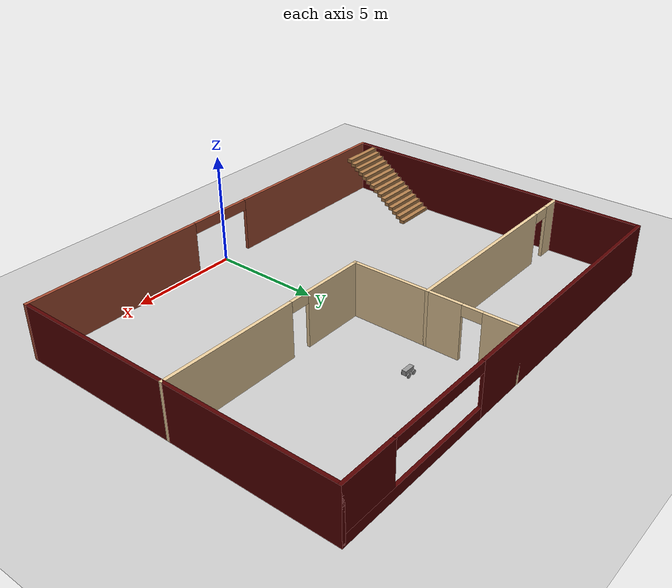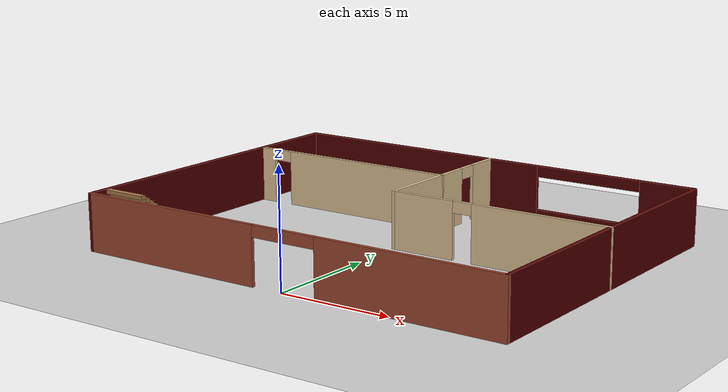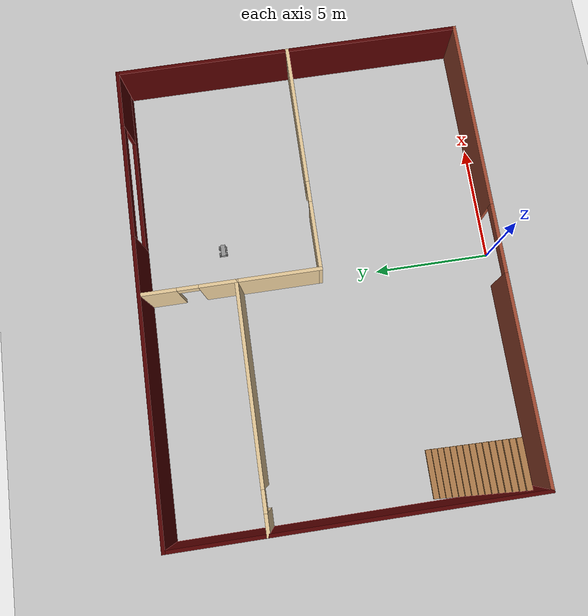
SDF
<sdf version="1.6">
 <world name="default">
  <model name="ground_plane">
   <static>1</static>
   <link name="link">
    <collision name="collision">
     <geometry><plane><normal>0 0 1</normal><size>100 100</size></plane></geometry>
     <surface>
      <contact><collide_bitmask>65535</collide_bitmask></contact>
      <friction><ode><mu>100</mu><mu2>50</mu2></ode></friction>
     </surface>
    </collision>
    <visual name="visual">
     <cast_shadows>0</cast_shadows>
     <geometry><plane><normal>0 0 1</normal><size>100 100</size></plane></geometry>
     <material>
      <script><uri>file://media/materials/scripts/gazebo.material</uri><name>Gazebo/Grey</name></script>
     </material>
    </visual>
   </link>
  </model>
  <model name="house">
   <pose>-0.056662 7.5 0 0 -0 0</pose>
   <link name="Stairs_0">
    <visual name="Stairs_0_Visual_0">
     <pose>-8.85 -3.36767 0.083333 0 -0 0</pose>
     <geometry><box><size>2 0.233333 0.166667</size></box></geometry>
     <material>
      <script><uri>file://media/materials/scripts/gazebo.material</uri><name>Gazebo/Wood</name></script>
      <ambient>1 1 1 1</ambient>
     </material>
     <meta><layer>0</layer></meta>
    </visual>
    <collision name="Stairs_0_Collision_0">
     <geometry><box><size>2 0.233333 0.166667</size></box></geometry>
     <pose>-8.85 -3.36767 0.083333 0 -0 0</pose>
    </collision>
    <visual name="Stairs_0_Visual_1">
     <pose>-8.85 -3.601 0.25 0 -0 0</pose>
     <geometry><box><size>2 0.233333 0.166667</size></box></geometry>
     <material>
      <script><uri>file://media/materials/scripts/gazebo.material</uri><name>Gazebo/Wood</name></script>
      <ambient>1 1 1 1</ambient>
     </material>
     <meta><layer>0</layer></meta>
    </visual>
    <collision name="Stairs_0_Collision_1">
     <geometry><box><size>2 0.233333 0.166667</size></box></geometry>
     <pose>-8.85 -3.601 0.25 0 -0 0</pose>
    </collision>
    <visual name="Stairs_0_Visual_2">
     <pose>-8.85 -3.83433 0.416667 0 -0 0</pose>
     <geometry><box><size>2 0.233333 0.166667</size></box></geometry>
     <material>
      <script><uri>file://media/materials/scripts/gazebo.material</uri><name>Gazebo/Wood</name></script>
      <ambient>1 1 1 1</ambient>
     </material>
     <meta><layer>0</layer></meta>
    </visual>
    <collision name="Stairs_0_Collision_2">
     <geometry><box><size>2 0.233333 0.166667</size></box></geometry>
     <pose>-8.85 -3.83433 0.416667 0 -0 0</pose>
    </collision>
    <visual name="Stairs_0_Visual_3">
     <pose>-8.85 -4.06767 0.583333 0 -0 0</pose>
     <geometry><box><size>2 0.233333 0.166667</size></box></geometry>
     <material>
      <script><uri>file://media/materials/scripts/gazebo.material</uri><name>Gazebo/Wood</name></script>
      <ambient>1 1 1 1</ambient>
     </material>
     <meta><layer>0</layer></meta>
    </visual>
    <collision name="Stairs_0_Collision_3">
     <geometry><box><size>2 0.233333 0.166667</size></box></geometry>
     <pose>-8.85 -4.06767 0.583333 0 -0 0</pose>
    </collision>
    <visual name="Stairs_0_Visual_4">
     <pose>-8.85 -4.301 0.75 0 -0 0</pose>
     <geometry><box><size>2 0.233333 0.166667</size></box></geometry>
     <material>
      <script><uri>file://media/materials/scripts/gazebo.material</uri><name>Gazebo/Wood</name></script>
      <ambient>1 1 1 1</ambient>
     </material>
     <meta><layer>0</layer></meta>
    </visual>
    <collision name="Stairs_0_Collision_4">
     <geometry><box><size>2 0.233333 0.166667</size></box></geometry>
     <pose>-8.85 -4.301 0.75 0 -0 0</pose>
    </collision>
    <visual name="Stairs_0_Visual_5">
     <pose>-8.85 -4.53433 0.916667 0 -0 0</pose>
     <geometry><box><size>2 0.233333 0.166667</size></box></geometry>
     <material>
      <script><uri>file://media/materials/scripts/gazebo.material</uri><name>Gazebo/Wood</name></script>
      <ambient>1 1 1 1</ambient>
     </material>
     <meta><layer>0</layer></meta>
    </visual>
    <collision name="Stairs_0_Collision_5">
     <geometry><box><size>2 0.233333 0.166667</size></box></geometry>
     <pose>-8.85 -4.53433 0.916667 0 -0 0</pose>
    </collision>
    <visual name="Stairs_0_Visual_6">
     <pose>-8.85 -4.76767 1.08333 0 -0 0</pose>
     <geometry><box><size>2 0.233333 0.166667</size></box></geometry>
     <material>
      <script><uri>file://media/materials/scripts/gazebo.material</uri><name>Gazebo/Wood</name></script>
      <ambient>1 1 1 1</ambient>
     </material>
     <meta><layer>0</layer></meta>
    </visual>
    <collision name="Stairs_0_Collision_6">
     <geometry><box><size>2 0.233333 0.166667</size></box></geometry>
     <pose>-8.85 -4.76767 1.08333 0 -0 0</pose>
    </collision>
    <visual name="Stairs_0_Visual_7">
     <pose>-8.85 -5.001 1.25 0 -0 0</pose>
     <geometry><box><size>2 0.233333 0.166667</size></box></geometry>
     <material>
      <script><uri>file://media/materials/scripts/gazebo.material</uri><name>Gazebo/Wood</name></script>
      <ambient>1 1 1 1</ambient>
     </material>
     <meta><layer>0</layer></meta>
    </visual>
    <collision name="Stairs_0_Collision_7">
     <geometry><box><size>2 0.233333 0.166667</size></box></geometry>
     <pose>-8.85 -5.001 1.25 0 -0 0</pose>
    </collision>
    <visual name="Stairs_0_Visual_8">
     <pose>-8.85 -5.23433 1.41667 0 -0 0</pose>
     <geometry><box><size>2 0.233333 0.166667</size></box></geometry>
     <material>
      <script><uri>file://media/materials/scripts/gazebo.material</uri><name>Gazebo/Wood</name></script>
      <ambient>1 1 1 1</ambient>
     </material>
     <meta><layer>0</layer></meta>
    </visual>
    <collision name="Stairs_0_Collision_8">
     <geometry><box><size>2 0.233333 0.166667</size></box></geometry>
     <pose>-8.85 -5.23433 1.41667 0 -0 0</pose>
    </collision>
    <visual name="Stairs_0_Visual_9">
     <pose>-8.85 -5.46767 1.58333 0 -0 0</pose>
     <geometry><box><size>2 0.233333 0.166667</size></box></geometry>
     <material>
      <script><uri>file://media/materials/scripts/gazebo.material</uri><name>Gazebo/Wood</name></script>
      <ambient>1 1 1 1</ambient>
     </material>
     <meta><layer>0</layer></meta>
    </visual>
    <collision name="Stairs_0_Collision_9">
     <geometry><box><size>2 0.233333 0.166667</size></box></geometry>
     <pose>-8.85 -5.46767 1.58333 0 -0 0</pose>
    </collision>
    <visual name="Stairs_0_Visual_10">
     <pose>-8.85 -5.701 1.75 0 -0 0</pose>
     <geometry><box><size>2 0.233333 0.166667</size></box></geometry>
     <material>
      <script><uri>file://media/materials/scripts/gazebo.material</uri><name>Gazebo/Wood</name></script>
      <ambient>1 1 1 1</ambient>
     </material>
     <meta><layer>0</layer></meta>
    </visual>
    <collision name="Stairs_0_Collision_10">
     <geometry><box><size>2 0.233333 0.166667</size></box></geometry>
     <pose>-8.85 -5.701 1.75 0 -0 0</pose>
    </collision>
    <visual name="Stairs_0_Visual_11">
     <pose>-8.85 -5.93433 1.91667 0 -0 0</pose>
     <geometry><box><size>2 0.233333 0.166667</size></box></geometry>
     <material>
      <script><uri>file://media/materials/scripts/gazebo.material</uri><name>Gazebo/Wood</name></script>
      <ambient>1 1 1 1</ambient>
     </material>
     <meta><layer>0</layer></meta>
    </visual>
    <collision name="Stairs_0_Collision_11">
     <geometry><box><size>2 0.233333 0.166667</size></box></geometry>
     <pose>-8.85 -5.93433 1.91667 0 -0 0</pose>
    </collision>
    <visual name="Stairs_0_Visual_12">
     <pose>-8.85 -6.16767 2.08333 0 -0 0</pose>
     <geometry><box><size>2 0.233333 0.166667</size></box></geometry>
     <material>
      <script><uri>file://media/materials/scripts/gazebo.material</uri><name>Gazebo/Wood</name></script>
      <ambient>1 1 1 1</ambient>
     </material>
     <meta><layer>0</layer></meta>
    </visual>
    <collision name="Stairs_0_Collision_12">
     <geometry><box><size>2 0.233333 0.166667</size></box></geometry>
     <pose>-8.85 -6.16767 2.08333 0 -0 0</pose>
    </collision>
    <visual name="Stairs_0_Visual_13">
     <pose>-8.85 -6.401 2.25 0 -0 0</pose>
     <geometry><box><size>2 0.233333 0.166667</size></box></geometry>
     <material>
      <script><uri>file://media/materials/scripts/gazebo.material</uri><name>Gazebo/Wood</name></script>
      <ambient>1 1 1 1</ambient>
     </material>
     <meta><layer>0</layer></meta>
    </visual>
    <collision name="Stairs_0_Collision_13">
     <geometry><box><size>2 0.233333 0.166667</size></box></geometry>
     <pose>-8.85 -6.401 2.25 0 -0 0</pose>
    </collision>
    <visual name="Stairs_0_Visual_14">
     <pose>-8.85 -6.63433 2.41667 0 -0 0</pose>
     <geometry><box><size>2 0.233333 0.166667</size></box></geometry>
     <material>
      <script><uri>file://media/materials/scripts/gazebo.material</uri><name>Gazebo/Wood</name></script>
      <ambient>1 1 1 1</ambient>
     </material>
     <meta><layer>0</layer></meta>
    </visual>
    <collision name="Stairs_0_Collision_14">
     <geometry><box><size>2 0.233333 0.166667</size></box></geometry>
     <pose>-8.85 -6.63433 2.41667 0 -0 0</pose>
    </collision>
   </link>
   <link name="Wall_11">
    <pose>5 0 0 0 -0 3.14159</pose>
    <visual name="Wall_11_Visual_0">
     <pose>-1.94599 0 1.25 0 -0 0</pose>
     <geometry><box><size>6.25803 0.15 2.5</size></box></geometry>
     <material>
      <script><uri>file://media/materials/scripts/gazebo.material</uri><name>Gazebo/Grey</name></script>
      <ambient>0.921569 0.807843 0.615686 1</ambient>
     </material>
     <meta><layer>0</layer></meta>
    </visual>
    <collision name="Wall_11_Collision_0">
     <geometry><box><size>6.25803 0.15 2.5</size></box></geometry>
     <pose>-1.94599 0 1.25 0 -0 0</pose>
    </collision>
    <visual name="Wall_11_Visual_1">
     <pose>3.57901 0 1.25 0 -0 0</pose>
     <geometry><box><size>2.99197 0.15 2.5</size></box></geometry>
     <material>
      <script><uri>file://media/materials/scripts/gazebo.material</uri><name>Gazebo/Grey</name></script>
      <ambient>0.921569 0.807843 0.615686 1</ambient>
     </material>
     <meta><layer>0</layer></meta>
    </visual>
    <collision name="Wall_11_Collision_1">
     <geometry><box><size>2.99197 0.15 2.5</size></box></geometry>
     <pose>3.57901 0 1.25 0 -0 0</pose>
    </collision>
    <visual name="Wall_11_Visual_2">
     <pose>1.63303 0 2.25 0 -0 0</pose>
     <geometry><box><size>0.9 0.15 0.5</size></box></geometry>
     <material>
      <script><uri>file://media/materials/scripts/gazebo.material</uri><name>Gazebo/Grey</name></script>
      <ambient>0.921569 0.807843 0.615686 1</ambient>
     </material>
     <meta><layer>0</layer></meta>
    </visual>
    <collision name="Wall_11_Collision_2">
     <geometry><box><size>0.9 0.15 0.5</size></box></geometry>
     <pose>1.63303 0 2.25 0 -0 0</pose>
    </collision>
   </link>
   <link name="Wall_12">
    <pose>0 3.75 0 0 -0 1.5708</pose>
    <visual name="Wall_12_Visual_0">
     <pose>-1.2625 0 1.25 0 -0 0</pose>
     <geometry><box><size>5.125 0.15 2.5</size></box></geometry>
     <material>
      <script><uri>file://media/materials/scripts/gazebo.material</uri><name>Gazebo/Grey</name></script>
      <ambient>0.921569 0.807843 0.615686 1</ambient>
     </material>
     <meta><layer>0</layer></meta>
    </visual>
    <collision name="Wall_12_Collision_0">
     <geometry><box><size>5.125 0.15 2.5</size></box></geometry>
     <pose>-1.2625 0 1.25 0 -0 0</pose>
    </collision>
    <visual name="Wall_12_Visual_1">
     <pose>3.0125 0 1.25 0 -0 0</pose>
     <geometry><box><size>1.625 0.15 2.5</size></box></geometry>
     <material>
      <script><uri>file://media/materials/scripts/gazebo.material</uri><name>Gazebo/Grey</name></script>
      <ambient>0.921569 0.807843 0.615686 1</ambient>
     </material>
     <meta><layer>0</layer></meta>
    </visual>
    <collision name="Wall_12_Collision_1">
     <geometry><box><size>1.625 0.15 2.5</size></box></geometry>
     <pose>3.0125 0 1.25 0 -0 0</pose>
    </collision>
    <visual name="Wall_12_Visual_2">
     <pose>1.75 0 2.25 0 -0 0</pose>
     <geometry><box><size>0.9 0.15 0.5</size></box></geometry>
     <material>
      <script><uri>file://media/materials/scripts/gazebo.material</uri><name>Gazebo/Grey</name></script>
      <ambient>0.921569 0.807843 0.615686 1</ambient>
     </material>
     <meta><layer>0</layer></meta>
    </visual>
    <collision name="Wall_12_Collision_2">
     <geometry><box><size>0.9 0.15 0.5</size></box></geometry>
     <pose>1.75 0 2.25 0 -0 0</pose>
    </collision>
   </link>
   <link name="Wall_14">
    <pose>-5 3.5 0 0 -0 0</pose>
    <visual name="Wall_14_Visual_0">
     <pose>-4.62816 0 1.25 0 -0 0</pose>
     <geometry><box><size>0.893672 0.15 2.5</size></box></geometry>
     <material>
      <script><uri>file://media/materials/scripts/gazebo.material</uri><name>Gazebo/Grey</name></script>
      <ambient>0.921569 0.807843 0.615686 1</ambient>
     </material>
     <meta><layer>0</layer></meta>
    </visual>
    <collision name="Wall_14_Collision_0">
     <geometry><box><size>0.893672 0.15 2.5</size></box></geometry>
     <pose>-4.62816 0 1.25 0 -0 0</pose>
    </collision>
    <visual name="Wall_14_Visual_1">
     <pose>0.896836 0 1.25 0 -0 0</pose>
     <geometry><box><size>8.35633 0.15 2.5</size></box></geometry>
     <material>
      <script><uri>file://media/materials/scripts/gazebo.material</uri><name>Gazebo/Grey</name></script>
      <ambient>0.921569 0.807843 0.615686 1</ambient>
     </material>
     <meta><layer>0</layer></meta>
    </visual>
    <collision name="Wall_14_Collision_1">
     <geometry><box><size>8.35633 0.15 2.5</size></box></geometry>
     <pose>0.896836 0 1.25 0 -0 0</pose>
    </collision>
    <visual name="Wall_14_Visual_2">
     <pose>-3.73133 0 2.25 0 -0 0</pose>
     <geometry><box><size>0.9 0.15 0.5</size></box></geometry>
     <material>
      <script><uri>file://media/materials/scripts/gazebo.material</uri><name>Gazebo/Grey</name></script>
      <ambient>0.921569 0.807843 0.615686 1</ambient>
     </material>
     <meta><layer>0</layer></meta>
    </visual>
    <collision name="Wall_14_Collision_2">
     <geometry><box><size>0.9 0.15 0.5</size></box></geometry>
     <pose>-3.73133 0 2.25 0 -0 0</pose>
    </collision>
   </link>
   <link name="Wall_6">
    <collision name="Wall_6_Collision">
     <geometry><box><size>15.15 0.15 2.5</size></box></geometry>
     <pose>0 0 1.25 0 -0 0</pose>
    </collision>
    <visual name="Wall_6_Visual">
     <pose>0 0 1.25 0 -0 0</pose>
     <geometry><box><size>15.15 0.15 2.5</size></box></geometry>
     <material>
      <script><uri>file://media/materials/scripts/gazebo.material</uri><name>Gazebo/Grey</name></script>
      <ambient>0.333333 0 0 1</ambient>
     </material>
     <meta><layer>0</layer></meta>
    </visual>
    <pose>-10 0 0 0 -0 1.5708</pose>
   </link>
   <link name="Wall_7">
    <pose>0 7.5 0 0 -0 0</pose>
    <visual name="Wall_7_Visual_0">
     <pose>-3.7875 0 1.25 0 -0 0</pose>
     <geometry><box><size>12.575 0.15 2.5</size></box></geometry>
     <material>
      <script><uri>file://media/materials/scripts/gazebo.material</uri><name>Gazebo/Grey</name></script>
      <ambient>0.333333 0 0 1</ambient>
     </material>
     <meta><layer>0</layer></meta>
    </visual>
    <collision name="Wall_7_Collision_0">
     <geometry><box><size>12.575 0.15 2.5</size></box></geometry>
     <pose>-3.7875 0 1.25 0 -0 0</pose>
    </collision>
    <visual name="Wall_7_Visual_1">
     <pose>6.2875 0 0.25 0 -0 0</pose>
     <geometry><box><size>7.575 0.15 0.5</size></box></geometry>
     <material>
      <script><uri>file://media/materials/scripts/gazebo.material</uri><name>Gazebo/Grey</name></script>
      <ambient>0.333333 0 0 1</ambient>
     </material>
     <meta><layer>0</layer></meta>
    </visual>
    <collision name="Wall_7_Collision_1">
     <geometry><box><size>7.575 0.15 0.5</size></box></geometry>
     <pose>6.2875 0 0.25 0 -0 0</pose>
    </collision>
    <visual name="Wall_7_Visual_2">
     <pose>8.7875 0 1.5 0 -0 0</pose>
     <geometry><box><size>2.575 0.15 2</size></box></geometry>
     <material>
      <script><uri>file://media/materials/scripts/gazebo.material</uri><name>Gazebo/Grey</name></script>
      <ambient>0.333333 0 0 1</ambient>
     </material>
     <meta><layer>0</layer></meta>
    </visual>
    <collision name="Wall_7_Collision_2">
     <geometry><box><size>2.575 0.15 2</size></box></geometry>
     <pose>8.7875 0 1.5 0 -0 0</pose>
    </collision>
    <visual name="Wall_7_Visual_3">
     <pose>5 0 2.25 0 -0 0</pose>
     <geometry><box><size>5 0.15 0.5</size></box></geometry>
     <material>
      <script><uri>file://media/materials/scripts/gazebo.material</uri><name>Gazebo/Grey</name></script>
      <ambient>0.333333 0 0 1</ambient>
     </material>
     <meta><layer>0</layer></meta>
    </visual>
    <collision name="Wall_7_Collision_3">
     <geometry><box><size>5 0.15 0.5</size></box></geometry>
     <pose>5 0 2.25 0 -0 0</pose>
    </collision>
   </link>
   <link name="Wall_8">
    <collision name="Wall_8_Collision">
     <geometry><box><size>15.15 0.15 2.5</size></box></geometry>
     <pose>0 0 1.25 0 -0 0</pose>
    </collision>
    <visual name="Wall_8_Visual">
     <pose>0 0 1.25 0 -0 0</pose>
     <geometry><box><size>15.15 0.15 2.5</size></box></geometry>
     <material>
      <script><uri>file://media/materials/scripts/gazebo.material</uri><name>Gazebo/Grey</name></script>
      <ambient>0.333333 0 0 1</ambient>
     </material>
     <meta><layer>0</layer></meta>
    </visual>
    <pose>10 0 0 0 0 -1.5708</pose>
   </link>
   <link name="Wall_9">
    <pose>0 -7.5 0 0 -0 3.14159</pose>
    <visual name="Wall_9_Visual_0">
     <pose>-5.88219 0 1.25 0 -0 0</pose>
     <geometry><box><size>8.38562 0.15 2.5</size></box></geometry>
     <material>
      <script><uri>file://media/materials/scripts/gazebo.material</uri><name>Gazebo/Bricks</name></script>
      <ambient>1 1 1 1</ambient>
     </material>
     <meta><layer>0</layer></meta>
    </visual>
    <collision name="Wall_9_Collision_0">
     <geometry><box><size>8.38562 0.15 2.5</size></box></geometry>
     <pose>-5.88219 0 1.25 0 -0 0</pose>
    </collision>
    <visual name="Wall_9_Visual_1">
     <pose>5.69281 0 1.25 0 -0 0</pose>
     <geometry><box><size>8.76438 0.15 2.5</size></box></geometry>
     <material>
      <script><uri>file://media/materials/scripts/gazebo.material</uri><name>Gazebo/Bricks</name></script>
      <ambient>1 1 1 1</ambient>
     </material>
     <meta><layer>0</layer></meta>
    </visual>
    <collision name="Wall_9_Collision_1">
     <geometry><box><size>8.76438 0.15 2.5</size></box></geometry>
     <pose>5.69281 0 1.25 0 -0 0</pose>
    </collision>
    <visual name="Wall_9_Visual_2">
     <pose>-0.189383 0 2.25 0 -0 0</pose>
     <geometry><box><size>3 0.15 0.5</size></box></geometry>
     <material>
      <script><uri>file://media/materials/scripts/gazebo.material</uri><name>Gazebo/Bricks</name></script>
      <ambient>1 1 1 1</ambient>
     </material>
     <meta><layer>0</layer></meta>
    </visual>
    <collision name="Wall_9_Collision_2">
     <geometry><box><size>3 0.15 0.5</size></box></geometry>
     <pose>-0.189383 0 2.25 0 -0 0</pose>
    </collision>
   </link>
   <static>1</static>
  </model>
  <model name="4wbot_0">
   <link name="link_0">
    <pose>-0 0 0.2 0 -0 0</pose>
    <inertial>
     <mass>1</mass>
     <inertia>
      <ixx>0.166667</ixx>
      <ixy>0</ixy>
      <ixz>0</ixz>
      <iyy>0.166667</iyy>
      <iyz>0</iyz>
      <izz>0.166667</izz>
     </inertia>
    </inertial>
    <visual name="visual">
     <geometry><box><size>0.5 0.2 0.2</size></box></geometry>
     <material>
      <lighting>1</lighting>
      <script><uri>file://media/materials/scripts/gazebo.material</uri><name>Gazebo/Grey</name></script>
      <shader type="pixel"><normal_map>__default__</normal_map></shader>
      <ambient>0.3 0.3 0.3 1</ambient>
      <diffuse>0.7 0.7 0.7 1</diffuse>
      <specular>0.01 0.01 0.01 1</specular>
      <emissive>0 0 0 1</emissive>
     </material>
    </visual>
    <collision name="collision">
     <geometry><box><size>0.5 0.2 0.2</size></box></geometry>
     <surface>
      <friction>
       <ode><mu>1</mu><mu2>1</mu2><fdir1>0 0 0</fdir1><slip1>0</slip1><slip2>0</slip2></ode>
       <torsional>
        <coefficient>1</coefficient>
        <patch_radius>0</patch_radius>
        <surface_radius>0</surface_radius>
        <use_patch_radius>1</use_patch_radius>
        <ode><slip>0</slip></ode>
       </torsional>
      </friction>
      <bounce><restitution_coefficient>0</restitution_coefficient><threshold>1e+06</threshold></bounce>
      <contact>
       <collide_without_contact>0</collide_without_contact>
       <collide_without_contact_bitmask>1</collide_without_contact_bitmask>
       <collide_bitmask>1</collide_bitmask>
       <ode>
        <soft_cfm>0</soft_cfm>
        <soft_erp>0.2</soft_erp>
        <kp>1e+13</kp>
        <kd>1</kd>
        <max_vel>0.01</max_vel>
        <min_depth>0</min_depth>
       </ode>
       <bullet>
        <split_impulse>1</split_impulse>
        <split_impulse_penetration_threshold>-0.01</split_impulse_penetration_threshold>
        <soft_cfm>0</soft_cfm>
        <soft_erp>0.2</soft_erp>
        <kp>1e+13</kp>
        <kd>1</kd>
       </bullet>
      </contact>
     </surface>
    </collision>
   </link>
   <link name="link_1">
    <pose>0.11 -0.125013 0.100055 1.5707 -0 0</pose>
    <inertial>
     <mass>1</mass>
     <inertia><ixx>0.145833</ixx><ixy>0</ixy><ixz>0</ixz><iyy>0.145833</iyy><iyz>0</iyz><izz>0.125</izz></inertia>
    </inertial>
    <visual name="visual">
     <geometry><cylinder><radius>0.1</radius><length>0.05</length></cylinder></geometry>
     <material>
      <lighting>1</lighting>
      <script><uri>file://media/materials/scripts/gazebo.material</uri><name>Gazebo/Grey</name></script>
      <shader type="pixel"><normal_map>__default__</normal_map></shader>
      <ambient>0.3 0.3 0.3 1</ambient>
      <diffuse>0.7 0.7 0.7 1</diffuse>
      <specular>0.01 0.01 0.01 1</specular>
      <emissive>0 0 0 1</emissive>
     </material>
    </visual>
    <collision name="collision">
     <geometry><cylinder><radius>0.1</radius><length>0.05</length></cylinder></geometry>
     <surface>
      <friction>
       <ode><mu>1</mu><mu2>1</mu2><fdir1>0 0 0</fdir1><slip1>0</slip1><slip2>0</slip2></ode>
       <torsional>
        <coefficient>1</coefficient>
        <patch_radius>0</patch_radius>
        <surface_radius>0</surface_radius>
        <use_patch_radius>1</use_patch_radius>
        <ode><slip>0</slip></ode>
       </torsional>
      </friction>
      <bounce><restitution_coefficient>0</restitution_coefficient><threshold>1e+06</threshold></bounce>
      <contact>
       <collide_without_contact>0</collide_without_contact>
       <collide_without_contact_bitmask>1</collide_without_contact_bitmask>
       <collide_bitmask>1</collide_bitmask>
       <ode>
        <soft_cfm>0</soft_cfm>
        <soft_erp>0.2</soft_erp>
        <kp>1e+13</kp>
        <kd>1</kd>
        <max_vel>0.01</max_vel>
        <min_depth>0</min_depth>
       </ode>
       <bullet>
        <split_impulse>1</split_impulse>
        <split_impulse_penetration_threshold>-0.01</split_impulse_penetration_threshold>
        <soft_cfm>0</soft_cfm>
        <soft_erp>0.2</soft_erp>
        <kp>1e+13</kp>
        <kd>1</kd>
       </bullet>
      </contact>
     </surface>
    </collision>
   </link>
   <link name="link_1_clone">
    <pose>-0.15 -0.125009 0.100055 1.5707 -0 0</pose>
    <inertial>
     <mass>1</mass>
     <inertia><ixx>0.145833</ixx><ixy>0</ixy><ixz>0</ixz><iyy>0.145833</iyy><iyz>0</iyz><izz>0.125</izz></inertia>
    </inertial>
    <visual name="visual">
     <geometry><cylinder><radius>0.1</radius><length>0.05</length></cylinder></geometry>
     <material>
      <lighting>1</lighting>
      <script><uri>file://media/materials/scripts/gazebo.material</uri><name>Gazebo/Grey</name></script>
      <shader type="pixel"><normal_map>__default__</normal_map></shader>
      <ambient>0.3 0.3 0.3 1</ambient>
      <diffuse>0.7 0.7 0.7 1</diffuse>
      <specular>0.01 0.01 0.01 1</specular>
      <emissive>0 0 0 1</emissive>
     </material>
    </visual>
    <collision name="collision">
     <geometry><cylinder><radius>0.1</radius><length>0.05</length></cylinder></geometry>
     <surface>
      <friction>
       <ode><mu>1</mu><mu2>1</mu2><fdir1>0 0 0</fdir1><slip1>0</slip1><slip2>0</slip2></ode>
       <torsional>
        <coefficient>1</coefficient>
        <patch_radius>0</patch_radius>
        <surface_radius>0</surface_radius>
        <use_patch_radius>1</use_patch_radius>
        <ode><slip>0</slip></ode>
       </torsional>
      </friction>
      <bounce><restitution_coefficient>0</restitution_coefficient><threshold>1e+06</threshold></bounce>
      <contact>
       <collide_without_contact>0</collide_without_contact>
       <collide_without_contact_bitmask>1</collide_without_contact_bitmask>
       <collide_bitmask>1</collide_bitmask>
       <ode>
        <soft_cfm>0</soft_cfm>
        <soft_erp>0.2</soft_erp>
        <kp>1e+13</kp>
        <kd>1</kd>
        <max_vel>0.01</max_vel>
        <min_depth>0</min_depth>
       </ode>
       <bullet>
        <split_impulse>1</split_impulse>
        <split_impulse_penetration_threshold>-0.01</split_impulse_penetration_threshold>
        <soft_cfm>0</soft_cfm>
        <soft_erp>0.2</soft_erp>
        <kp>1e+13</kp>
        <kd>1</kd>
       </bullet>
      </contact>
     </surface>
    </collision>
   </link>
   <link name="link_1_clone_0">
    <pose>-0.15 0.16501 0.100055 1.5707 -0 0</pose>
    <inertial>
     <mass>1</mass>
     <inertia><ixx>0.145833</ixx><ixy>0</ixy><ixz>0</ixz><iyy>0.145833</iyy><iyz>0</iyz><izz>0.125</izz></inertia>
    </inertial>
    <visual name="visual">
     <geometry><cylinder><radius>0.1</radius><length>0.05</length></cylinder></geometry>
     <material>
      <lighting>1</lighting>
      <script><uri>file://media/materials/scripts/gazebo.material</uri><name>Gazebo/Grey</name></script>
      <shader type="pixel"><normal_map>__default__</normal_map></shader>
      <ambient>0.3 0.3 0.3 1</ambient>
      <diffuse>0.7 0.7 0.7 1</diffuse>
      <specular>0.01 0.01 0.01 1</specular>
      <emissive>0 0 0 1</emissive>
     </material>
    </visual>
    <collision name="collision">
     <geometry><cylinder><radius>0.1</radius><length>0.05</length></cylinder></geometry>
     <surface>
      <friction>
       <ode><mu>1</mu><mu2>1</mu2><fdir1>0 0 0</fdir1><slip1>0</slip1><slip2>0</slip2></ode>
       <torsional>
        <coefficient>1</coefficient>
        <patch_radius>0</patch_radius>
        <surface_radius>0</surface_radius>
        <use_patch_radius>1</use_patch_radius>
        <ode><slip>0</slip></ode>
       </torsional>
      </friction>
      <bounce><restitution_coefficient>0</restitution_coefficient><threshold>1e+06</threshold></bounce>
      <contact>
       <collide_without_contact>0</collide_without_contact>
       <collide_without_contact_bitmask>1</collide_without_contact_bitmask>
       <collide_bitmask>1</collide_bitmask>
       <ode>
        <soft_cfm>0</soft_cfm>
        <soft_erp>0.2</soft_erp>
        <kp>1e+13</kp>
        <kd>1</kd>
        <max_vel>0.01</max_vel>
        <min_depth>0</min_depth>
       </ode>
       <bullet>
        <split_impulse>1</split_impulse>
        <split_impulse_penetration_threshold>-0.01</split_impulse_penetration_threshold>
        <soft_cfm>0</soft_cfm>
        <soft_erp>0.2</soft_erp>
        <kp>1e+13</kp>
        <kd>1</kd>
       </bullet>
      </contact>
     </surface>
    </collision>
   </link>
   <link name="link_1_clone_1">
    <pose>0.15 0.16501 0.100055 1.5707 -0 0</pose>
    <inertial>
     <mass>1</mass>
     <inertia><ixx>0.145833</ixx><ixy>0</ixy><ixz>0</ixz><iyy>0.145833</iyy><iyz>0</iyz><izz>0.125</izz></inertia>
    </inertial>
    <visual name="visual">
     <geometry><cylinder><radius>0.1</radius><length>0.05</length></cylinder></geometry>
     <material>
      <lighting>1</lighting>
      <script><uri>file://media/materials/scripts/gazebo.material</uri><name>Gazebo/Grey</name></script>
      <shader type="pixel"><normal_map>__default__</normal_map></shader>
      <ambient>0.3 0.3 0.3 1</ambient>
      <diffuse>0.7 0.7 0.7 1</diffuse>
      <specular>0.01 0.01 0.01 1</specular>
      <emissive>0 0 0 1</emissive>
     </material>
    </visual>
    <collision name="collision">
     <geometry><cylinder><radius>0.1</radius><length>0.05</length></cylinder></geometry>
     <surface>
      <friction>
       <ode><mu>1</mu><mu2>1</mu2><fdir1>0 0 0</fdir1><slip1>0</slip1><slip2>0</slip2></ode>
       <torsional>
        <coefficient>1</coefficient>
        <patch_radius>0</patch_radius>
        <surface_radius>0</surface_radius>
        <use_patch_radius>1</use_patch_radius>
        <ode><slip>0</slip></ode>
       </torsional>
      </friction>
      <bounce><restitution_coefficient>0</restitution_coefficient><threshold>1e+06</threshold></bounce>
      <contact>
       <collide_without_contact>0</collide_without_contact>
       <collide_without_contact_bitmask>1</collide_without_contact_bitmask>
       <collide_bitmask>1</collide_bitmask>
       <ode>
        <soft_cfm>0</soft_cfm>
        <soft_erp>0.2</soft_erp>
        <kp>1e+13</kp>
        <kd>1</kd>
        <max_vel>0.01</max_vel>
        <min_depth>0</min_depth>
       </ode>
       <bullet>
        <split_impulse>1</split_impulse>
        <split_impulse_penetration_threshold>-0.01</split_impulse_penetration_threshold>
        <soft_cfm>0</soft_cfm>
        <soft_erp>0.2</soft_erp>
        <kp>1e+13</kp>
        <kd>1</kd>
       </bullet>
      </contact>
     </surface>
    </collision>
   </link>
   <joint name="link_0_JOINT_1" type="revolute">
    <parent>link_0</parent>
    <child>link_1_clone</child>
    <axis>
     <xyz>0 0 1</xyz>
     <use_parent_model_frame>0</use_parent_model_frame>
     <limit>
      <lower>-1.79769e+308</lower>
      <upper>1.79769e+308</upper>
      <effort>-1</effort>
      <velocity>-1</velocity>
     </limit>
     <dynamics>
      <spring_reference>0</spring_reference>
      <spring_stiffness>0</spring_stiffness>
      <damping>0</damping>
     </dynamics>
    </axis>
    <physics>
     <ode><limit><cfm>0</cfm><erp>0.2</erp></limit><suspension><cfm>0</cfm><erp>0.2</erp></suspension></ode>
    </physics>
   </joint>
   <joint name="link_0_JOINT_3" type="revolute">
    <parent>link_0</parent>
    <child>link_1_clone_1</child>
    <axis>
     <xyz>0 0 1</xyz>
     <use_parent_model_frame>0</use_parent_model_frame>
     <limit>
      <lower>-1.79769e+308</lower>
      <upper>1.79769e+308</upper>
      <effort>-1</effort>
      <velocity>-1</velocity>
     </limit>
     <dynamics>
      <spring_reference>0</spring_reference>
      <spring_stiffness>0</spring_stiffness>
      <damping>0</damping>
     </dynamics>
    </axis>
    <physics>
     <ode><limit><cfm>0</cfm><erp>0.2</erp></limit><suspension><cfm>0</cfm><erp>0.2</erp></suspension></ode>
    </physics>
   </joint>
   <joint name="link_0_JOINT_4" type="revolute">
    <parent>link_0</parent>
    <child>link_1_clone_0</child>
    <axis>
     <xyz>0 0 1</xyz>
     <use_parent_model_frame>0</use_parent_model_frame>
     <limit>
      <lower>-1.79769e+308</lower>
      <upper>1.79769e+308</upper>
      <effort>-1</effort>
      <velocity>-1</velocity>
     </limit>
     <dynamics>
      <spring_reference>0</spring_reference>
      <spring_stiffness>0</spring_stiffness>
      <damping>0</damping>
     </dynamics>
    </axis>
    <physics>
     <ode><limit><cfm>0</cfm><erp>0.2</erp></limit><suspension><cfm>0</cfm><erp>0.2</erp></suspension></ode>
    </physics>
   </joint>
   <joint name="link_0_JOINT_6" type="revolute">
    <parent>link_0</parent>
    <child>link_1</child>
    <axis>
     <xyz>0 0 1</xyz>
     <use_parent_model_frame>0</use_parent_model_frame>
     <limit>
      <lower>-1.79769e+308</lower>
      <upper>1.79769e+308</upper>
      <effort>-1</effort>
      <velocity>-1</velocity>
     </limit>
     <dynamics>
      <spring_reference>0</spring_reference>
      <spring_stiffness>0</spring_stiffness>
      <damping>0</damping>
     </dynamics>
    </axis>
    <physics>
     <ode><limit><cfm>0</cfm><erp>0.2</erp></limit><suspension><cfm>0</cfm><erp>0.2</erp></suspension></ode>
    </physics>
   </joint>
   <static>0</static>
   <pose>1.92662 11.5866 -5.2e-05 -3e-06 1.1e-05 -0.012283</pose>
  </model>
 </world>
</sdf>
